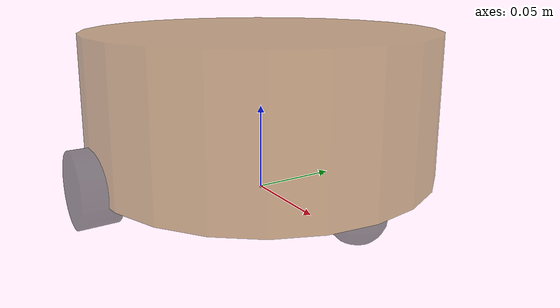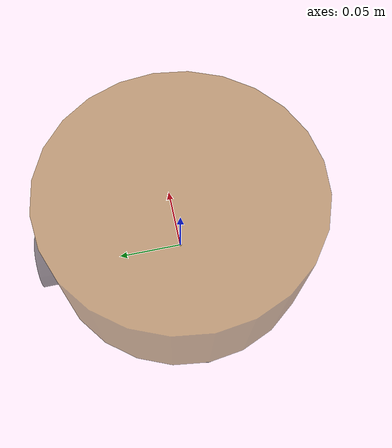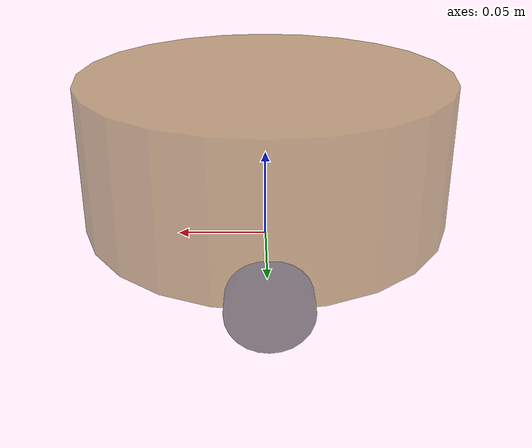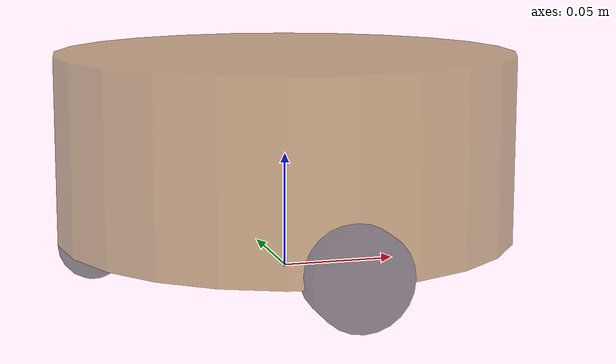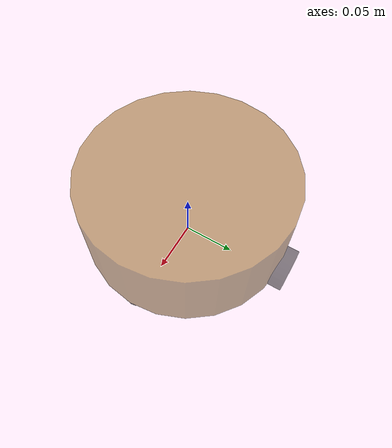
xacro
<robot name="mycar"
    xmlns:xacro="http://wiki.ros.org/xacro">
    <xacro:property name="footprint_radius" value="0.001" />
    <xacro:property name="base_radius" value="0.1"/>
    <xacro:property name="base_length" value="0.08"/>
    <xacro:property name="base_mass" value="2"/>

    <xacro:property name="wheel_mass" value="0.05"/>
    <xacro:property name="small_wheel_mass" value="0.01"/>

    <xacro:property name="lidi" value="0.015"/>
    <xacro:property name="base_joint_z" value="${base_length / 2 + lidi}"/>

    <xacro:property name="wheel_radius" value="0.02" />
    <xacro:property name="wheel_length" value="0.02" />

    <xacro:property name="PI" value="3.1415927" />
    <xacro:property name="wheel_joint_z" value="${-1* (base_length / 2 + lidi - wheel_radius)}" />
    <xacro:property name="small_wheel_radius" value="0.015"/>
    <xacro:property name="small_joint_z" value="${-(0.5*base_length+lidi-small_wheel_radius)}"/>

    <link name="base_footprint">
        <visual>
            <geometry>
                <sphere radius="${footprint_radius}"/>
            </geometry>
        </visual>
    </link>

    <link name="base_link">
        <visual>
            <geometry>
                <cylinder radius="${base_radius}" length="${base_length}" />
            </geometry>
            <origin xyz="0 0 0" rpy="0 0 0" />
            <material name="yellow">
                <color rgba="0.5 0.3 0.0 0.5" />
            </material>
        </visual>
        <collision>
            <geometry>
                <cylinder radius="${base_radius}" length="${base_length}" />
            </geometry>
            <origin xyz="0 0 0" rpy="0 0 0" />
        </collision>
        <xacro:cylinder_inertial_matrix m="${base_mass}" r="${base_radius}" h="${base_length}" />
    </link>
    <gazebo reference="base_link">
        <material>
        Gazebo/Yellow
        </material>
    </gazebo>

    <joint name="base_link2base_footprint" type="fixed">
        <parent link="base_footprint"/>
        <child link="base_link"/>
        <origin xyz="0 0 ${base_joint_z}" />
    </joint>

    <xacro:macro name="wheel_func" params="wheel_name flag">
        <link name="${wheel_name}_wheel">
            <visual>
                <geometry>
                    <cylinder radius="${wheel_radius}" length="${wheel_length}" />
                </geometry>
                <origin xyz="0 0 0" rpy="${PI /2} 0 0" />
                <material name="wheel_color">
                    <color rgba="0 0 0 0.5" />
                </material>
            </visual>
            <collision>
                <geometry>
                    <cylinder radius="${wheel_radius}" length="${wheel_length}" />
                </geometry>
                <origin xyz="0 0 0" rpy="${PI /2} 0 0" />
            </collision>
            <xacro:cylinder_inertial_matrix m="${wheel_mass}" r="${wheel_radius}" h="${wheel_length}" />
        </link>
        <gazebo reference="${wheel_name}_wheel">
            <material>
                Gazebo/Red
            </material>
        </gazebo>

        <joint name="${wheel_name}2link" type="continuous">
            <parent link="base_link" />
            <child link="${wheel_name}_wheel" />
            <origin xyz="0 ${base_radius*flag} ${-(lidi+base_length/2-wheel_radius)}" rpy="0 0 0" />
            <axis xyz="0 1 0" />
        </joint>
    </xacro:macro>

    <xacro:macro name="small_wheel_func" params="small_wheel_name flag">
        <link name="${small_wheel_name}_wheel">
            <visual>
                <geometry>
                    <sphere radius="${small_wheel_radius}" />
                </geometry>
                <origin xyz="0 0 0" rpy="0 0 0" />
                <material name="wheel_color">
                    <color rgba="0 0 0 0.5" />
                </material>
            </visual>
            <collision>
                <geometry>
                    <sphere radius="${small_wheel_radius}" />
                </geometry>
                <origin xyz="0 0 0" rpy="0 0 0" />
            </collision>
            <xacro:sphere_inertial_matrix m="${small_wheel_mass}" r="${small_wheel_radius}" />
        </link>
        <gazebo reference="${small_wheel_name}_wheel">
            <material>
                Gazebo/Red
            </material>
        </gazebo>
        <joint name="${small_wheel_name}2link" type="continuous">
            <parent link="base_link" />
            <child link="${small_wheel_name}_wheel" />
            <origin xyz="${(base_radius-small_wheel_radius)*flag} 0 ${-(base_length+lidi-small_wheel_radius)/2}" rpy="0 0 0" />
            <axis xyz="1 1 1" />
        </joint>
    </xacro:macro>

    <xacro:wheel_func wheel_name="left" flag="1" />
    <xacro:wheel_func wheel_name="right" flag="-1" />

    <xacro:small_wheel_func small_wheel_name="front" flag="1" />
    <xacro:small_wheel_func small_wheel_name="back" flag="-1" />

</robot>
